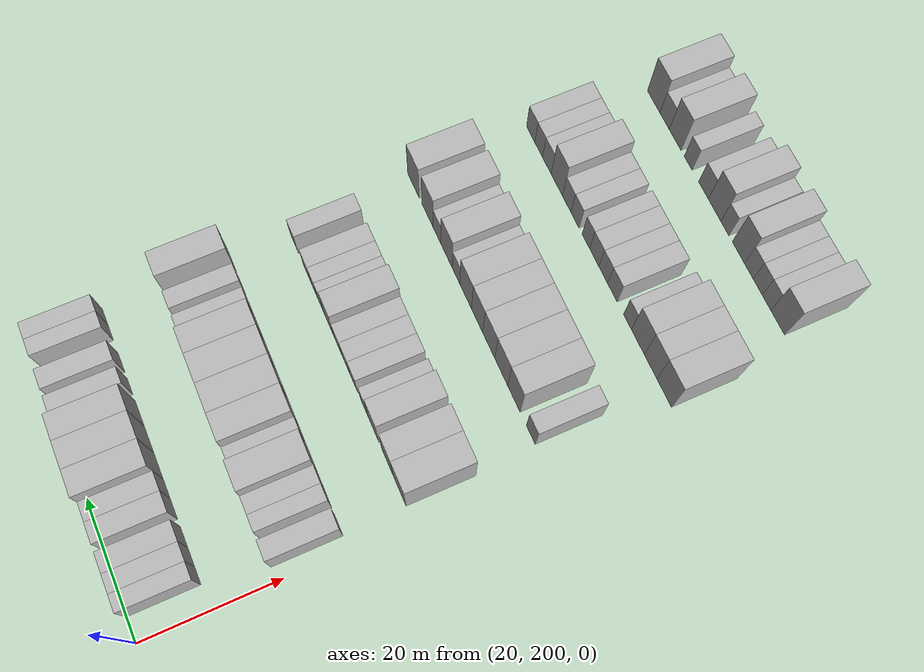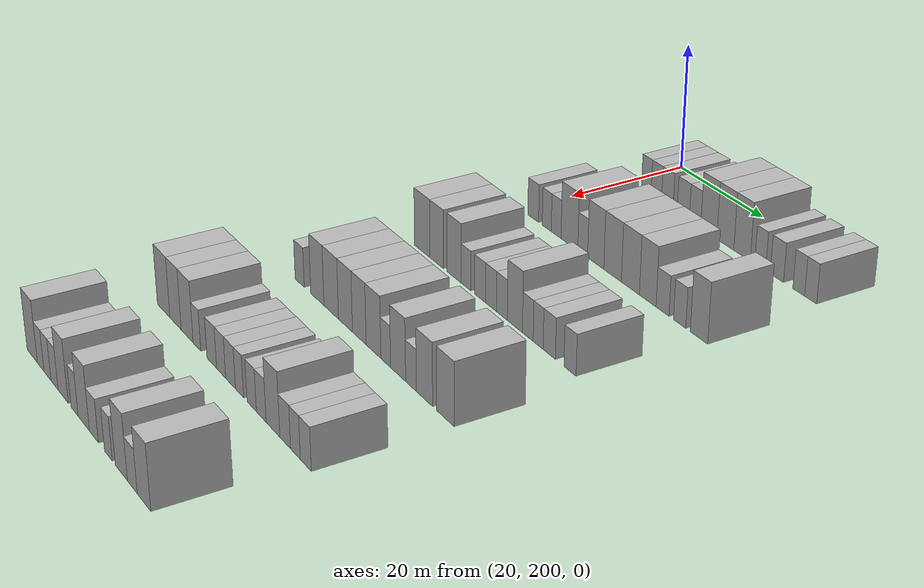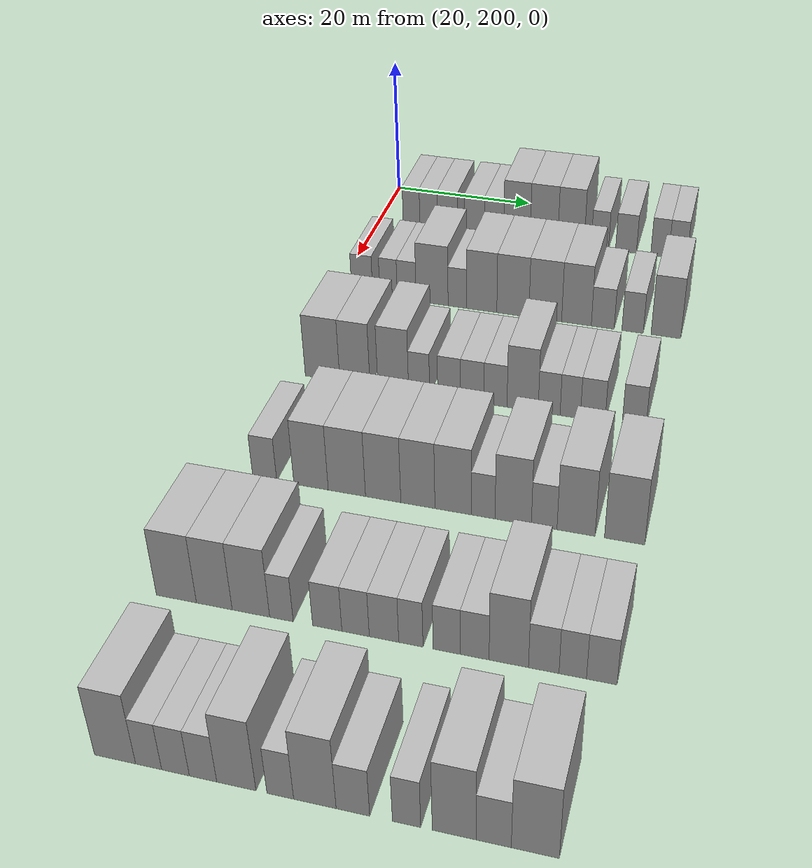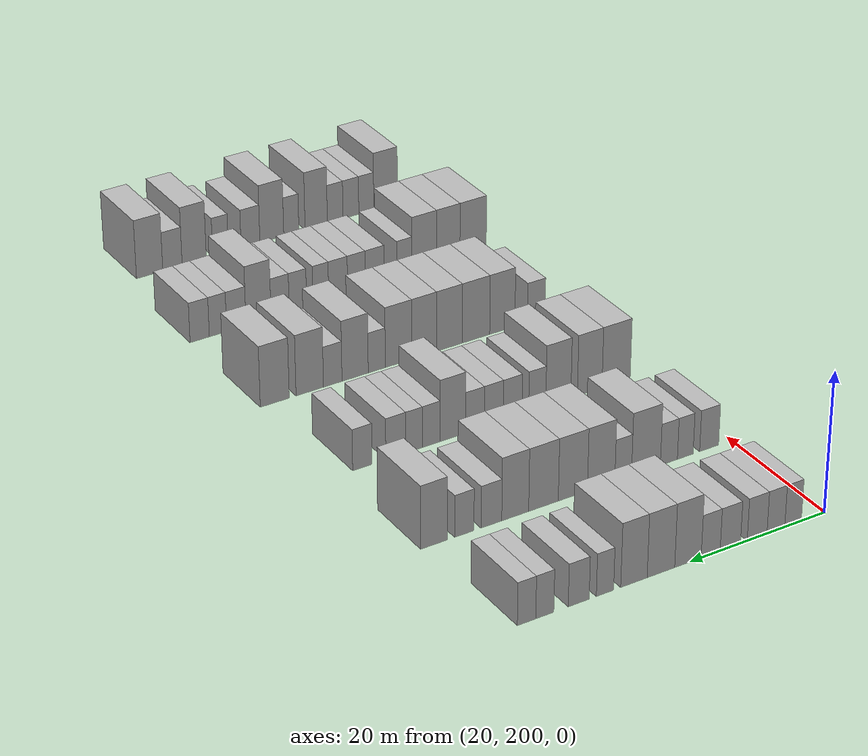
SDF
<sdf version="1.6">
 <world name="default">
  <model name="building_144">
   <static>1</static>
   <pose>25.0000 204.7909 0 0.000000 0.000000 0.000000</pose>
   <link name="link">
    <pose>0 0 3.00 0 0 0</pose>
    <collision name="collision"><geometry><box><size>10.0000 2.4946 6.0000</size></box></geometry></collision>
    <visual name="visual">
     <cast_shadows>0</cast_shadows>
     <geometry><box><size>10.0000 2.4946 6.0000</size></box></geometry>
     <material>
      <script>
       <uri>model://HANNAS_wall/materials/scripts</uri>
       <uri>model://HANNAS_wall/materials/textures</uri>
       <name>vrc/HANNAS_wall</name>
      </script>
     </material>
    </visual>
   </link>
  </model>
  <model name="building_145">
   <static>1</static>
   <pose>25.0000 207.3649 0 0.000000 0.000000 0.000000</pose>
   <link name="link">
    <pose>0 0 3.00 0 0 0</pose>
    <collision name="collision"><geometry><box><size>10.0000 2.6533 6.0000</size></box></geometry></collision>
    <visual name="visual">
     <cast_shadows>0</cast_shadows>
     <geometry><box><size>10.0000 2.6533 6.0000</size></box></geometry>
     <material>
      <script>
       <uri>model://HANNAS_wall/materials/scripts</uri>
       <uri>model://HANNAS_wall/materials/textures</uri>
       <name>vrc/HANNAS_wall</name>
      </script>
     </material>
    </visual>
   </link>
  </model>
  <model name="building_146">
   <static>1</static>
   <pose>25.0000 210.1625 0 0.000000 0.000000 0.000000</pose>
   <link name="link">
    <pose>0 0 3.00 0 0 0</pose>
    <collision name="collision"><geometry><box><size>10.0000 2.9418 6.0000</size></box></geometry></collision>
    <visual name="visual">
     <cast_shadows>0</cast_shadows>
     <geometry><box><size>10.0000 2.9418 6.0000</size></box></geometry>
     <material>
      <script>
       <uri>model://HANNAS_wall/materials/scripts</uri>
       <uri>model://HANNAS_wall/materials/textures</uri>
       <name>vrc/HANNAS_wall</name>
      </script>
     </material>
    </visual>
   </link>
  </model>
  <model name="building_147">
   <static>1</static>
   <pose>25.0000 214.1259 0 0.000000 0.000000 0.000000</pose>
   <link name="link">
    <pose>0 0 3.00 0 0 0</pose>
    <collision name="collision"><geometry><box><size>10.0000 2.9849 6.0000</size></box></geometry></collision>
    <visual name="visual">
     <cast_shadows>0</cast_shadows>
     <geometry><box><size>10.0000 2.9849 6.0000</size></box></geometry>
     <material>
      <script>
       <uri>model://HANNAS_wall/materials/scripts</uri>
       <uri>model://HANNAS_wall/materials/textures</uri>
       <name>vrc/HANNAS_wall</name>
      </script>
     </material>
    </visual>
   </link>
  </model>
  <model name="building_148">
   <static>1</static>
   <pose>25.0000 217.0065 0 0.000000 0.000000 0.000000</pose>
   <link name="link">
    <pose>0 0 3.00 0 0 0</pose>
    <collision name="collision"><geometry><box><size>10.0000 2.7764 6.0000</size></box></geometry></collision>
    <visual name="visual">
     <cast_shadows>0</cast_shadows>
     <geometry><box><size>10.0000 2.7764 6.0000</size></box></geometry>
     <material>
      <script>
       <uri>model://HANNAS_wall/materials/scripts</uri>
       <uri>model://HANNAS_wall/materials/textures</uri>
       <name>vrc/HANNAS_wall</name>
      </script>
     </material>
    </visual>
   </link>
  </model>
  <model name="building_149">
   <static>1</static>
   <pose>25.0000 220.3161 0 0.000000 0.000000 0.000000</pose>
   <link name="link">
    <pose>0 0 4.50 0 0 0</pose>
    <collision name="collision"><geometry><box><size>10.0000 3.8427 9.0000</size></box></geometry></collision>
    <visual name="visual">
     <cast_shadows>0</cast_shadows>
     <geometry><box><size>10.0000 3.8427 9.0000</size></box></geometry>
     <material>
      <script>
       <uri>model://HANNAS_wall/materials/scripts</uri>
       <uri>model://HANNAS_wall/materials/textures</uri>
       <name>vrc/HANNAS_wall</name>
      </script>
     </material>
    </visual>
   </link>
  </model>
  <model name="building_150">
   <static>1</static>
   <pose>25.0000 224.2165 0 0.000000 0.000000 0.000000</pose>
   <link name="link">
    <pose>0 0 4.50 0 0 0</pose>
    <collision name="collision"><geometry><box><size>10.0000 3.9581 9.0000</size></box></geometry></collision>
    <visual name="visual">
     <cast_shadows>0</cast_shadows>
     <geometry><box><size>10.0000 3.9581 9.0000</size></box></geometry>
     <material>
      <script>
       <uri>model://HANNAS_wall/materials/scripts</uri>
       <uri>model://HANNAS_wall/materials/textures</uri>
       <name>vrc/HANNAS_wall</name>
      </script>
     </material>
    </visual>
   </link>
  </model>
  <model name="building_151">
   <static>1</static>
   <pose>25.0000 228.0783 0 0.000000 0.000000 0.000000</pose>
   <link name="link">
    <pose>0 0 4.50 0 0 0</pose>
    <collision name="collision"><geometry><box><size>10.0000 3.7656 9.0000</size></box></geometry></collision>
    <visual name="visual">
     <cast_shadows>0</cast_shadows>
     <geometry><box><size>10.0000 3.7656 9.0000</size></box></geometry>
     <material>
      <script>
       <uri>model://HANNAS_wall/materials/scripts</uri>
       <uri>model://HANNAS_wall/materials/textures</uri>
       <name>vrc/HANNAS_wall</name>
      </script>
     </material>
    </visual>
   </link>
  </model>
  <model name="building_152">
   <static>1</static>
   <pose>25.0000 232.1813 0 0.000000 0.000000 0.000000</pose>
   <link name="link">
    <pose>0 0 3.00 0 0 0</pose>
    <collision name="collision"><geometry><box><size>10.0000 2.4403 6.0000</size></box></geometry></collision>
    <visual name="visual">
     <cast_shadows>0</cast_shadows>
     <geometry><box><size>10.0000 2.4403 6.0000</size></box></geometry>
     <material>
      <script>
       <uri>model://HANNAS_wall/materials/scripts</uri>
       <uri>model://HANNAS_wall/materials/textures</uri>
       <name>vrc/HANNAS_wall</name>
      </script>
     </material>
    </visual>
   </link>
  </model>
  <model name="building_153">
   <static>1</static>
   <pose>25.0000 235.8617 0 0.000000 0.000000 0.000000</pose>
   <link name="link">
    <pose>0 0 3.00 0 0 0</pose>
    <collision name="collision"><geometry><box><size>10.0000 2.9205 6.0000</size></box></geometry></collision>
    <visual name="visual">
     <cast_shadows>0</cast_shadows>
     <geometry><box><size>10.0000 2.9205 6.0000</size></box></geometry>
     <material>
      <script>
       <uri>model://HANNAS_wall/materials/scripts</uri>
       <uri>model://HANNAS_wall/materials/textures</uri>
       <name>vrc/HANNAS_wall</name>
      </script>
     </material>
    </visual>
   </link>
  </model>
  <model name="building_154">
   <static>1</static>
   <pose>25.0000 240.5678 0 0.000000 0.000000 0.000000</pose>
   <link name="link">
    <pose>0 0 3.00 0 0 0</pose>
    <collision name="collision"><geometry><box><size>10.0000 2.4918 6.0000</size></box></geometry></collision>
    <visual name="visual">
     <cast_shadows>0</cast_shadows>
     <geometry><box><size>10.0000 2.4918 6.0000</size></box></geometry>
     <material>
      <script>
       <uri>model://HANNAS_wall/materials/scripts</uri>
       <uri>model://HANNAS_wall/materials/textures</uri>
       <name>vrc/HANNAS_wall</name>
      </script>
     </material>
    </visual>
   </link>
  </model>
  <model name="building_155">
   <static>1</static>
   <pose>25.0000 243.0780 0 0.000000 0.000000 0.000000</pose>
   <link name="link">
    <pose>0 0 3.00 0 0 0</pose>
    <collision name="collision"><geometry><box><size>10.0000 2.5286 6.0000</size></box></geometry></collision>
    <visual name="visual">
     <cast_shadows>0</cast_shadows>
     <geometry><box><size>10.0000 2.5286 6.0000</size></box></geometry>
     <material>
      <script>
       <uri>model://HANNAS_wall/materials/scripts</uri>
       <uri>model://HANNAS_wall/materials/textures</uri>
       <name>vrc/HANNAS_wall</name>
      </script>
     </material>
    </visual>
   </link>
  </model>
  <model name="building_309">
   <static>1</static>
   <pose>44.0000 203.4681 0 0.000000 0.000000 0.000000</pose>
   <link name="link">
    <pose>0 0 3.00 0 0 0</pose>
    <collision name="collision"><geometry><box><size>10.0000 2.9147 6.0000</size></box></geometry></collision>
    <visual name="visual">
     <cast_shadows>0</cast_shadows>
     <geometry><box><size>10.0000 2.9147 6.0000</size></box></geometry>
     <material>
      <script>
       <uri>model://HANNAS_wall/materials/scripts</uri>
       <uri>model://HANNAS_wall/materials/textures</uri>
       <name>vrc/HANNAS_wall</name>
      </script>
     </material>
    </visual>
   </link>
  </model>
  <model name="building_310">
   <static>1</static>
   <pose>44.0000 207.1272 0 0.000000 0.000000 0.000000</pose>
   <link name="link">
    <pose>0 0 3.00 0 0 0</pose>
    <collision name="collision"><geometry><box><size>10.0000 2.4034 6.0000</size></box></geometry></collision>
    <visual name="visual">
     <cast_shadows>0</cast_shadows>
     <geometry><box><size>10.0000 2.4034 6.0000</size></box></geometry>
     <material>
      <script>
       <uri>model://HANNAS_wall/materials/scripts</uri>
       <uri>model://HANNAS_wall/materials/textures</uri>
       <name>vrc/HANNAS_wall</name>
      </script>
     </material>
    </visual>
   </link>
  </model>
  <model name="building_311">
   <static>1</static>
   <pose>44.0000 209.6219 0 0.000000 0.000000 0.000000</pose>
   <link name="link">
    <pose>0 0 3.00 0 0 0</pose>
    <collision name="collision"><geometry><box><size>10.0000 2.5860 6.0000</size></box></geometry></collision>
    <visual name="visual">
     <cast_shadows>0</cast_shadows>
     <geometry><box><size>10.0000 2.5860 6.0000</size></box></geometry>
     <material>
      <script>
       <uri>model://HANNAS_wall/materials/scripts</uri>
       <uri>model://HANNAS_wall/materials/textures</uri>
       <name>vrc/HANNAS_wall</name>
      </script>
     </material>
    </visual>
   </link>
  </model>
  <model name="building_312">
   <static>1</static>
   <pose>44.0000 213.0892 0 0.000000 0.000000 0.000000</pose>
   <link name="link">
    <pose>0 0 4.50 0 0 0</pose>
    <collision name="collision"><geometry><box><size>10.0000 4.3486 9.0000</size></box></geometry></collision>
    <visual name="visual">
     <cast_shadows>0</cast_shadows>
     <geometry><box><size>10.0000 4.3486 9.0000</size></box></geometry>
     <material>
      <script>
       <uri>model://HANNAS_wall/materials/scripts</uri>
       <uri>model://HANNAS_wall/materials/textures</uri>
       <name>vrc/HANNAS_wall</name>
      </script>
     </material>
    </visual>
   </link>
  </model>
  <model name="building_313">
   <static>1</static>
   <pose>44.0000 216.5099 0 0.000000 0.000000 0.000000</pose>
   <link name="link">
    <pose>0 0 3.00 0 0 0</pose>
    <collision name="collision"><geometry><box><size>10.0000 2.4927 6.0000</size></box></geometry></collision>
    <visual name="visual">
     <cast_shadows>0</cast_shadows>
     <geometry><box><size>10.0000 2.4927 6.0000</size></box></geometry>
     <material>
      <script>
       <uri>model://HANNAS_wall/materials/scripts</uri>
       <uri>model://HANNAS_wall/materials/textures</uri>
       <name>vrc/HANNAS_wall</name>
      </script>
     </material>
    </visual>
   </link>
  </model>
  <model name="building_314">
   <static>1</static>
   <pose>44.0000 219.7888 0 0.000000 0.000000 0.000000</pose>
   <link name="link">
    <pose>0 0 4.50 0 0 0</pose>
    <collision name="collision"><geometry><box><size>10.0000 4.0652 9.0000</size></box></geometry></collision>
    <visual name="visual">
     <cast_shadows>0</cast_shadows>
     <geometry><box><size>10.0000 4.0652 9.0000</size></box></geometry>
     <material>
      <script>
       <uri>model://HANNAS_wall/materials/scripts</uri>
       <uri>model://HANNAS_wall/materials/textures</uri>
       <name>vrc/HANNAS_wall</name>
      </script>
     </material>
    </visual>
   </link>
  </model>
  <model name="building_315">
   <static>1</static>
   <pose>44.0000 223.9574 0 0.000000 0.000000 0.000000</pose>
   <link name="link">
    <pose>0 0 4.50 0 0 0</pose>
    <collision name="collision"><geometry><box><size>10.0000 4.2720 9.0000</size></box></geometry></collision>
    <visual name="visual">
     <cast_shadows>0</cast_shadows>
     <geometry><box><size>10.0000 4.2720 9.0000</size></box></geometry>
     <material>
      <script>
       <uri>model://HANNAS_wall/materials/scripts</uri>
       <uri>model://HANNAS_wall/materials/textures</uri>
       <name>vrc/HANNAS_wall</name>
      </script>
     </material>
    </visual>
   </link>
  </model>
  <model name="building_316">
   <static>1</static>
   <pose>44.0000 228.2443 0 0.000000 0.000000 0.000000</pose>
   <link name="link">
    <pose>0 0 4.50 0 0 0</pose>
    <collision name="collision"><geometry><box><size>10.0000 4.3016 9.0000</size></box></geometry></collision>
    <visual name="visual">
     <cast_shadows>0</cast_shadows>
     <geometry><box><size>10.0000 4.3016 9.0000</size></box></geometry>
     <material>
      <script>
       <uri>model://HANNAS_wall/materials/scripts</uri>
       <uri>model://HANNAS_wall/materials/textures</uri>
       <name>vrc/HANNAS_wall</name>
      </script>
     </material>
    </visual>
   </link>
  </model>
  <model name="building_317">
   <static>1</static>
   <pose>44.0000 232.3325 0 0.000000 0.000000 0.000000</pose>
   <link name="link">
    <pose>0 0 4.50 0 0 0</pose>
    <collision name="collision"><geometry><box><size>10.0000 3.8748 9.0000</size></box></geometry></collision>
    <visual name="visual">
     <cast_shadows>0</cast_shadows>
     <geometry><box><size>10.0000 3.8748 9.0000</size></box></geometry>
     <material>
      <script>
       <uri>model://HANNAS_wall/materials/scripts</uri>
       <uri>model://HANNAS_wall/materials/textures</uri>
       <name>vrc/HANNAS_wall</name>
      </script>
     </material>
    </visual>
   </link>
  </model>
  <model name="building_318">
   <static>1</static>
   <pose>44.0000 235.7505 0 0.000000 0.000000 0.000000</pose>
   <link name="link">
    <pose>0 0 3.00 0 0 0</pose>
    <collision name="collision"><geometry><box><size>10.0000 2.9612 6.0000</size></box></geometry></collision>
    <visual name="visual">
     <cast_shadows>0</cast_shadows>
     <geometry><box><size>10.0000 2.9612 6.0000</size></box></geometry>
     <material>
      <script>
       <uri>model://HANNAS_wall/materials/scripts</uri>
       <uri>model://HANNAS_wall/materials/textures</uri>
       <name>vrc/HANNAS_wall</name>
      </script>
     </material>
    </visual>
   </link>
  </model>
  <model name="building_319">
   <static>1</static>
   <pose>44.0000 239.5969 0 0.000000 0.000000 0.000000</pose>
   <link name="link">
    <pose>0 0 3.00 0 0 0</pose>
    <collision name="collision"><geometry><box><size>10.0000 2.7316 6.0000</size></box></geometry></collision>
    <visual name="visual">
     <cast_shadows>0</cast_shadows>
     <geometry><box><size>10.0000 2.7316 6.0000</size></box></geometry>
     <material>
      <script>
       <uri>model://HANNAS_wall/materials/scripts</uri>
       <uri>model://HANNAS_wall/materials/textures</uri>
       <name>vrc/HANNAS_wall</name>
      </script>
     </material>
    </visual>
   </link>
  </model>
  <model name="building_320">
   <static>1</static>
   <pose>44.0000 243.8486 0 0.000000 0.000000 0.000000</pose>
   <link name="link">
    <pose>0 0 4.50 0 0 0</pose>
    <collision name="collision"><geometry><box><size>10.0000 3.7718 9.0000</size></box></geometry></collision>
    <visual name="visual">
     <cast_shadows>0</cast_shadows>
     <geometry><box><size>10.0000 3.7718 9.0000</size></box></geometry>
     <material>
      <script>
       <uri>model://HANNAS_wall/materials/scripts</uri>
       <uri>model://HANNAS_wall/materials/textures</uri>
       <name>vrc/HANNAS_wall</name>
      </script>
     </material>
    </visual>
   </link>
  </model>
  <model name="building_475">
   <static>1</static>
   <pose>63.0000 204.5110 0 0.000000 0.000000 0.000000</pose>
   <link name="link">
    <pose>0 0 4.50 0 0 0</pose>
    <collision name="collision"><geometry><box><size>10.0000 4.4213 9.0000</size></box></geometry></collision>
    <visual name="visual">
     <cast_shadows>0</cast_shadows>
     <geometry><box><size>10.0000 4.4213 9.0000</size></box></geometry>
     <material>
      <script>
       <uri>model://HANNAS_wall/materials/scripts</uri>
       <uri>model://HANNAS_wall/materials/textures</uri>
       <name>vrc/HANNAS_wall</name>
      </script>
     </material>
    </visual>
   </link>
  </model>
  <model name="building_476">
   <static>1</static>
   <pose>63.0000 208.6339 0 0.000000 0.000000 0.000000</pose>
   <link name="link">
    <pose>0 0 4.50 0 0 0</pose>
    <collision name="collision"><geometry><box><size>10.0000 3.8246 9.0000</size></box></geometry></collision>
    <visual name="visual">
     <cast_shadows>0</cast_shadows>
     <geometry><box><size>10.0000 3.8246 9.0000</size></box></geometry>
     <material>
      <script>
       <uri>model://HANNAS_wall/materials/scripts</uri>
       <uri>model://HANNAS_wall/materials/textures</uri>
       <name>vrc/HANNAS_wall</name>
      </script>
     </material>
    </visual>
   </link>
  </model>
  <model name="building_477">
   <static>1</static>
   <pose>63.0000 213.4714 0 0.000000 0.000000 0.000000</pose>
   <link name="link">
    <pose>0 0 4.50 0 0 0</pose>
    <collision name="collision"><geometry><box><size>10.0000 3.8504 9.0000</size></box></geometry></collision>
    <visual name="visual">
     <cast_shadows>0</cast_shadows>
     <geometry><box><size>10.0000 3.8504 9.0000</size></box></geometry>
     <material>
      <script>
       <uri>model://HANNAS_wall/materials/scripts</uri>
       <uri>model://HANNAS_wall/materials/textures</uri>
       <name>vrc/HANNAS_wall</name>
      </script>
     </material>
    </visual>
   </link>
  </model>
  <model name="building_478">
   <static>1</static>
   <pose>63.0000 216.7036 0 0.000000 0.000000 0.000000</pose>
   <link name="link">
    <pose>0 0 3.00 0 0 0</pose>
    <collision name="collision"><geometry><box><size>10.0000 2.6140 6.0000</size></box></geometry></collision>
    <visual name="visual">
     <cast_shadows>0</cast_shadows>
     <geometry><box><size>10.0000 2.6140 6.0000</size></box></geometry>
     <material>
      <script>
       <uri>model://HANNAS_wall/materials/scripts</uri>
       <uri>model://HANNAS_wall/materials/textures</uri>
       <name>vrc/HANNAS_wall</name>
      </script>
     </material>
    </visual>
   </link>
  </model>
  <model name="building_479">
   <static>1</static>
   <pose>63.0000 220.4214 0 0.000000 0.000000 0.000000</pose>
   <link name="link">
    <pose>0 0 3.00 0 0 0</pose>
    <collision name="collision"><geometry><box><size>10.0000 2.8214 6.0000</size></box></geometry></collision>
    <visual name="visual">
     <cast_shadows>0</cast_shadows>
     <geometry><box><size>10.0000 2.8214 6.0000</size></box></geometry>
     <material>
      <script>
       <uri>model://HANNAS_wall/materials/scripts</uri>
       <uri>model://HANNAS_wall/materials/textures</uri>
       <name>vrc/HANNAS_wall</name>
      </script>
     </material>
    </visual>
   </link>
  </model>
  <model name="building_480">
   <static>1</static>
   <pose>63.0000 223.2634 0 0.000000 0.000000 0.000000</pose>
   <link name="link">
    <pose>0 0 3.00 0 0 0</pose>
    <collision name="collision"><geometry><box><size>10.0000 2.8627 6.0000</size></box></geometry></collision>
    <visual name="visual">
     <cast_shadows>0</cast_shadows>
     <geometry><box><size>10.0000 2.8627 6.0000</size></box></geometry>
     <material>
      <script>
       <uri>model://HANNAS_wall/materials/scripts</uri>
       <uri>model://HANNAS_wall/materials/textures</uri>
       <name>vrc/HANNAS_wall</name>
      </script>
     </material>
    </visual>
   </link>
  </model>
  <model name="building_481">
   <static>1</static>
   <pose>63.0000 226.0904 0 0.000000 0.000000 0.000000</pose>
   <link name="link">
    <pose>0 0 3.00 0 0 0</pose>
    <collision name="collision"><geometry><box><size>10.0000 2.7912 6.0000</size></box></geometry></collision>
    <visual name="visual">
     <cast_shadows>0</cast_shadows>
     <geometry><box><size>10.0000 2.7912 6.0000</size></box></geometry>
     <material>
      <script>
       <uri>model://HANNAS_wall/materials/scripts</uri>
       <uri>model://HANNAS_wall/materials/textures</uri>
       <name>vrc/HANNAS_wall</name>
      </script>
     </material>
    </visual>
   </link>
  </model>
  <model name="building_482">
   <static>1</static>
   <pose>63.0000 229.3650 0 0.000000 0.000000 0.000000</pose>
   <link name="link">
    <pose>0 0 4.50 0 0 0</pose>
    <collision name="collision"><geometry><box><size>10.0000 3.7580 9.0000</size></box></geometry></collision>
    <visual name="visual">
     <cast_shadows>0</cast_shadows>
     <geometry><box><size>10.0000 3.7580 9.0000</size></box></geometry>
     <material>
      <script>
       <uri>model://HANNAS_wall/materials/scripts</uri>
       <uri>model://HANNAS_wall/materials/textures</uri>
       <name>vrc/HANNAS_wall</name>
      </script>
     </material>
    </visual>
   </link>
  </model>
  <model name="building_483">
   <static>1</static>
   <pose>63.0000 232.5531 0 0.000000 0.000000 0.000000</pose>
   <link name="link">
    <pose>0 0 3.00 0 0 0</pose>
    <collision name="collision"><geometry><box><size>10.0000 2.6181 6.0000</size></box></geometry></collision>
    <visual name="visual">
     <cast_shadows>0</cast_shadows>
     <geometry><box><size>10.0000 2.6181 6.0000</size></box></geometry>
     <material>
      <script>
       <uri>model://HANNAS_wall/materials/scripts</uri>
       <uri>model://HANNAS_wall/materials/textures</uri>
       <name>vrc/HANNAS_wall</name>
      </script>
     </material>
    </visual>
   </link>
  </model>
  <model name="building_484">
   <static>1</static>
   <pose>63.0000 235.0660 0 0.000000 0.000000 0.000000</pose>
   <link name="link">
    <pose>0 0 3.00 0 0 0</pose>
    <collision name="collision"><geometry><box><size>10.0000 2.4077 6.0000</size></box></geometry></collision>
    <visual name="visual">
     <cast_shadows>0</cast_shadows>
     <geometry><box><size>10.0000 2.4077 6.0000</size></box></geometry>
     <material>
      <script>
       <uri>model://HANNAS_wall/materials/scripts</uri>
       <uri>model://HANNAS_wall/materials/textures</uri>
       <name>vrc/HANNAS_wall</name>
      </script>
     </material>
    </visual>
   </link>
  </model>
  <model name="building_485">
   <static>1</static>
   <pose>63.0000 237.7285 0 0.000000 0.000000 0.000000</pose>
   <link name="link">
    <pose>0 0 3.00 0 0 0</pose>
    <collision name="collision"><geometry><box><size>10.0000 2.9173 6.0000</size></box></geometry></collision>
    <visual name="visual">
     <cast_shadows>0</cast_shadows>
     <geometry><box><size>10.0000 2.9173 6.0000</size></box></geometry>
     <material>
      <script>
       <uri>model://HANNAS_wall/materials/scripts</uri>
       <uri>model://HANNAS_wall/materials/textures</uri>
       <name>vrc/HANNAS_wall</name>
      </script>
     </material>
    </visual>
   </link>
  </model>
  <model name="building_486">
   <static>1</static>
   <pose>63.0000 242.5767 0 0.000000 0.000000 0.000000</pose>
   <link name="link">
    <pose>0 0 3.00 0 0 0</pose>
    <collision name="collision"><geometry><box><size>10.0000 2.7791 6.0000</size></box></geometry></collision>
    <visual name="visual">
     <cast_shadows>0</cast_shadows>
     <geometry><box><size>10.0000 2.7791 6.0000</size></box></geometry>
     <material>
      <script>
       <uri>model://HANNAS_wall/materials/scripts</uri>
       <uri>model://HANNAS_wall/materials/textures</uri>
       <name>vrc/HANNAS_wall</name>
      </script>
     </material>
    </visual>
   </link>
  </model>
  <model name="building_641">
   <static>1</static>
   <pose>82.0000 204.3930 0 0.000000 0.000000 0.000000</pose>
   <link name="link">
    <pose>0 0 3.00 0 0 0</pose>
    <collision name="collision"><geometry><box><size>10.0000 2.8102 6.0000</size></box></geometry></collision>
    <visual name="visual">
     <cast_shadows>0</cast_shadows>
     <geometry><box><size>10.0000 2.8102 6.0000</size></box></geometry>
     <material>
      <script>
       <uri>model://HANNAS_wall/materials/scripts</uri>
       <uri>model://HANNAS_wall/materials/textures</uri>
       <name>vrc/HANNAS_wall</name>
      </script>
     </material>
    </visual>
   </link>
  </model>
  <model name="building_642">
   <static>1</static>
   <pose>82.0000 209.7882 0 0.000000 0.000000 0.000000</pose>
   <link name="link">
    <pose>0 0 4.50 0 0 0</pose>
    <collision name="collision"><geometry><box><size>10.0000 3.9802 9.0000</size></box></geometry></collision>
    <visual name="visual">
     <cast_shadows>0</cast_shadows>
     <geometry><box><size>10.0000 3.9802 9.0000</size></box></geometry>
     <material>
      <script>
       <uri>model://HANNAS_wall/materials/scripts</uri>
       <uri>model://HANNAS_wall/materials/textures</uri>
       <name>vrc/HANNAS_wall</name>
      </script>
     </material>
    </visual>
   </link>
  </model>
  <model name="building_643">
   <static>1</static>
   <pose>82.0000 213.9108 0 0.000000 0.000000 0.000000</pose>
   <link name="link">
    <pose>0 0 4.50 0 0 0</pose>
    <collision name="collision"><geometry><box><size>10.0000 4.2650 9.0000</size></box></geometry></collision>
    <visual name="visual">
     <cast_shadows>0</cast_shadows>
     <geometry><box><size>10.0000 4.2650 9.0000</size></box></geometry>
     <material>
      <script>
       <uri>model://HANNAS_wall/materials/scripts</uri>
       <uri>model://HANNAS_wall/materials/textures</uri>
       <name>vrc/HANNAS_wall</name>
      </script>
     </material>
    </visual>
   </link>
  </model>
  <model name="building_644">
   <static>1</static>
   <pose>82.0000 218.0419 0 0.000000 0.000000 0.000000</pose>
   <link name="link">
    <pose>0 0 4.50 0 0 0</pose>
    <collision name="collision"><geometry><box><size>10.0000 3.9972 9.0000</size></box></geometry></collision>
    <visual name="visual">
     <cast_shadows>0</cast_shadows>
     <geometry><box><size>10.0000 3.9972 9.0000</size></box></geometry>
     <material>
      <script>
       <uri>model://HANNAS_wall/materials/scripts</uri>
       <uri>model://HANNAS_wall/materials/textures</uri>
       <name>vrc/HANNAS_wall</name>
      </script>
     </material>
    </visual>
   </link>
  </model>
  <model name="building_645">
   <static>1</static>
   <pose>82.0000 221.9510 0 0.000000 0.000000 0.000000</pose>
   <link name="link">
    <pose>0 0 4.50 0 0 0</pose>
    <collision name="collision"><geometry><box><size>10.0000 3.8209 9.0000</size></box></geometry></collision>
    <visual name="visual">
     <cast_shadows>0</cast_shadows>
     <geometry><box><size>10.0000 3.8209 9.0000</size></box></geometry>
     <material>
      <script>
       <uri>model://HANNAS_wall/materials/scripts</uri>
       <uri>model://HANNAS_wall/materials/textures</uri>
       <name>vrc/HANNAS_wall</name>
      </script>
     </material>
    </visual>
   </link>
  </model>
  <model name="building_646">
   <static>1</static>
   <pose>82.0000 225.8784 0 0.000000 0.000000 0.000000</pose>
   <link name="link">
    <pose>0 0 4.50 0 0 0</pose>
    <collision name="collision"><geometry><box><size>10.0000 4.0338 9.0000</size></box></geometry></collision>
    <visual name="visual">
     <cast_shadows>0</cast_shadows>
     <geometry><box><size>10.0000 4.0338 9.0000</size></box></geometry>
     <material>
      <script>
       <uri>model://HANNAS_wall/materials/scripts</uri>
       <uri>model://HANNAS_wall/materials/textures</uri>
       <name>vrc/HANNAS_wall</name>
      </script>
     </material>
    </visual>
   </link>
  </model>
  <model name="building_647">
   <static>1</static>
   <pose>82.0000 229.1922 0 0.000000 0.000000 0.000000</pose>
   <link name="link">
    <pose>0 0 3.00 0 0 0</pose>
    <collision name="collision"><geometry><box><size>10.0000 2.5939 6.0000</size></box></geometry></collision>
    <visual name="visual">
     <cast_shadows>0</cast_shadows>
     <geometry><box><size>10.0000 2.5939 6.0000</size></box></geometry>
     <material>
      <script>
       <uri>model://HANNAS_wall/materials/scripts</uri>
       <uri>model://HANNAS_wall/materials/textures</uri>
       <name>vrc/HANNAS_wall</name>
      </script>
     </material>
    </visual>
   </link>
  </model>
  <model name="building_648">
   <static>1</static>
   <pose>82.0000 232.4609 0 0.000000 0.000000 0.000000</pose>
   <link name="link">
    <pose>0 0 4.50 0 0 0</pose>
    <collision name="collision"><geometry><box><size>10.0000 3.9434 9.0000</size></box></geometry></collision>
    <visual name="visual">
     <cast_shadows>0</cast_shadows>
     <geometry><box><size>10.0000 3.9434 9.0000</size></box></geometry>
     <material>
      <script>
       <uri>model://HANNAS_wall/materials/scripts</uri>
       <uri>model://HANNAS_wall/materials/textures</uri>
       <name>vrc/HANNAS_wall</name>
      </script>
     </material>
    </visual>
   </link>
  </model>
  <model name="building_649">
   <static>1</static>
   <pose>82.0000 235.8146 0 0.000000 0.000000 0.000000</pose>
   <link name="link">
    <pose>0 0 3.00 0 0 0</pose>
    <collision name="collision"><geometry><box><size>10.0000 2.7640 6.0000</size></box></geometry></collision>
    <visual name="visual">
     <cast_shadows>0</cast_shadows>
     <geometry><box><size>10.0000 2.7640 6.0000</size></box></geometry>
     <material>
      <script>
       <uri>model://HANNAS_wall/materials/scripts</uri>
       <uri>model://HANNAS_wall/materials/textures</uri>
       <name>vrc/HANNAS_wall</name>
      </script>
     </material>
    </visual>
   </link>
  </model>
  <model name="building_650">
   <static>1</static>
   <pose>82.0000 239.2278 0 0.000000 0.000000 0.000000</pose>
   <link name="link">
    <pose>0 0 4.50 0 0 0</pose>
    <collision name="collision"><geometry><box><size>10.0000 4.0625 9.0000</size></box></geometry></collision>
    <visual name="visual">
     <cast_shadows>0</cast_shadows>
     <geometry><box><size>10.0000 4.0625 9.0000</size></box></geometry>
     <material>
      <script>
       <uri>model://HANNAS_wall/materials/scripts</uri>
       <uri>model://HANNAS_wall/materials/textures</uri>
       <name>vrc/HANNAS_wall</name>
      </script>
     </material>
    </visual>
   </link>
  </model>
  <model name="building_651">
   <static>1</static>
   <pose>82.0000 244.3797 0 0.000000 0.000000 0.000000</pose>
   <link name="link">
    <pose>0 0 4.50 0 0 0</pose>
    <collision name="collision"><geometry><box><size>10.0000 4.2413 9.0000</size></box></geometry></collision>
    <visual name="visual">
     <cast_shadows>0</cast_shadows>
     <geometry><box><size>10.0000 4.2413 9.0000</size></box></geometry>
     <material>
      <script>
       <uri>model://HANNAS_wall/materials/scripts</uri>
       <uri>model://HANNAS_wall/materials/textures</uri>
       <name>vrc/HANNAS_wall</name>
      </script>
     </material>
    </visual>
   </link>
  </model>
  <model name="building_806">
   <static>1</static>
   <pose>101.0000 202.3974 0 0.000000 0.000000 0.000000</pose>
   <link name="link">
    <pose>0 0 4.50 0 0 0</pose>
    <collision name="collision"><geometry><box><size>10.0000 4.2970 9.0000</size></box></geometry></collision>
    <visual name="visual">
     <cast_shadows>0</cast_shadows>
     <geometry><box><size>10.0000 4.2970 9.0000</size></box></geometry>
     <material>
      <script>
       <uri>model://HANNAS_wall/materials/scripts</uri>
       <uri>model://HANNAS_wall/materials/textures</uri>
       <name>vrc/HANNAS_wall</name>
      </script>
     </material>
    </visual>
   </link>
  </model>
  <model name="building_807">
   <static>1</static>
   <pose>101.0000 206.4417 0 0.000000 0.000000 0.000000</pose>
   <link name="link">
    <pose>0 0 4.50 0 0 0</pose>
    <collision name="collision"><geometry><box><size>10.0000 3.7916 9.0000</size></box></geometry></collision>
    <visual name="visual">
     <cast_shadows>0</cast_shadows>
     <geometry><box><size>10.0000 3.7916 9.0000</size></box></geometry>
     <material>
      <script>
       <uri>model://HANNAS_wall/materials/scripts</uri>
       <uri>model://HANNAS_wall/materials/textures</uri>
       <name>vrc/HANNAS_wall</name>
      </script>
     </material>
    </visual>
   </link>
  </model>
  <model name="building_808">
   <static>1</static>
   <pose>101.0000 210.3028 0 0.000000 0.000000 0.000000</pose>
   <link name="link">
    <pose>0 0 4.50 0 0 0</pose>
    <collision name="collision"><geometry><box><size>10.0000 3.9308 9.0000</size></box></geometry></collision>
    <visual name="visual">
     <cast_shadows>0</cast_shadows>
     <geometry><box><size>10.0000 3.9308 9.0000</size></box></geometry>
     <material>
      <script>
       <uri>model://HANNAS_wall/materials/scripts</uri>
       <uri>model://HANNAS_wall/materials/textures</uri>
       <name>vrc/HANNAS_wall</name>
      </script>
     </material>
    </visual>
   </link>
  </model>
  <model name="building_809">
   <static>1</static>
   <pose>101.0000 213.4913 0 0.000000 0.000000 0.000000</pose>
   <link name="link">
    <pose>0 0 3.00 0 0 0</pose>
    <collision name="collision"><geometry><box><size>10.0000 2.4461 6.0000</size></box></geometry></collision>
    <visual name="visual">
     <cast_shadows>0</cast_shadows>
     <geometry><box><size>10.0000 2.4461 6.0000</size></box></geometry>
     <material>
      <script>
       <uri>model://HANNAS_wall/materials/scripts</uri>
       <uri>model://HANNAS_wall/materials/textures</uri>
       <name>vrc/HANNAS_wall</name>
      </script>
     </material>
    </visual>
   </link>
  </model>
  <model name="building_810">
   <static>1</static>
   <pose>101.0000 218.2112 0 0.000000 0.000000 0.000000</pose>
   <link name="link">
    <pose>0 0 3.00 0 0 0</pose>
    <collision name="collision"><geometry><box><size>10.0000 2.9937 6.0000</size></box></geometry></collision>
    <visual name="visual">
     <cast_shadows>0</cast_shadows>
     <geometry><box><size>10.0000 2.9937 6.0000</size></box></geometry>
     <material>
      <script>
       <uri>model://HANNAS_wall/materials/scripts</uri>
       <uri>model://HANNAS_wall/materials/textures</uri>
       <name>vrc/HANNAS_wall</name>
      </script>
     </material>
    </visual>
   </link>
  </model>
  <model name="building_811">
   <static>1</static>
   <pose>101.0000 221.0969 0 0.000000 0.000000 0.000000</pose>
   <link name="link">
    <pose>0 0 3.00 0 0 0</pose>
    <collision name="collision"><geometry><box><size>10.0000 2.7777 6.0000</size></box></geometry></collision>
    <visual name="visual">
     <cast_shadows>0</cast_shadows>
     <geometry><box><size>10.0000 2.7777 6.0000</size></box></geometry>
     <material>
      <script>
       <uri>model://HANNAS_wall/materials/scripts</uri>
       <uri>model://HANNAS_wall/materials/textures</uri>
       <name>vrc/HANNAS_wall</name>
      </script>
     </material>
    </visual>
   </link>
  </model>
  <model name="building_812">
   <static>1</static>
   <pose>101.0000 223.9658 0 0.000000 0.000000 0.000000</pose>
   <link name="link">
    <pose>0 0 3.00 0 0 0</pose>
    <collision name="collision"><geometry><box><size>10.0000 2.9602 6.0000</size></box></geometry></collision>
    <visual name="visual">
     <cast_shadows>0</cast_shadows>
     <geometry><box><size>10.0000 2.9602 6.0000</size></box></geometry>
     <material>
      <script>
       <uri>model://HANNAS_wall/materials/scripts</uri>
       <uri>model://HANNAS_wall/materials/textures</uri>
       <name>vrc/HANNAS_wall</name>
      </script>
     </material>
    </visual>
   </link>
  </model>
  <model name="building_813">
   <static>1</static>
   <pose>101.0000 226.6589 0 0.000000 0.000000 0.000000</pose>
   <link name="link">
    <pose>0 0 3.00 0 0 0</pose>
    <collision name="collision"><geometry><box><size>10.0000 2.4259 6.0000</size></box></geometry></collision>
    <visual name="visual">
     <cast_shadows>0</cast_shadows>
     <geometry><box><size>10.0000 2.4259 6.0000</size></box></geometry>
     <material>
      <script>
       <uri>model://HANNAS_wall/materials/scripts</uri>
       <uri>model://HANNAS_wall/materials/textures</uri>
       <name>vrc/HANNAS_wall</name>
      </script>
     </material>
    </visual>
   </link>
  </model>
  <model name="building_814">
   <static>1</static>
   <pose>101.0000 230.2165 0 0.000000 0.000000 0.000000</pose>
   <link name="link">
    <pose>0 0 3.00 0 0 0</pose>
    <collision name="collision"><geometry><box><size>10.0000 2.6894 6.0000</size></box></geometry></collision>
    <visual name="visual">
     <cast_shadows>0</cast_shadows>
     <geometry><box><size>10.0000 2.6894 6.0000</size></box></geometry>
     <material>
      <script>
       <uri>model://HANNAS_wall/materials/scripts</uri>
       <uri>model://HANNAS_wall/materials/textures</uri>
       <name>vrc/HANNAS_wall</name>
      </script>
     </material>
    </visual>
   </link>
  </model>
  <model name="building_815">
   <static>1</static>
   <pose>101.0000 232.9593 0 0.000000 0.000000 0.000000</pose>
   <link name="link">
    <pose>0 0 3.00 0 0 0</pose>
    <collision name="collision"><geometry><box><size>10.0000 2.7963 6.0000</size></box></geometry></collision>
    <visual name="visual">
     <cast_shadows>0</cast_shadows>
     <geometry><box><size>10.0000 2.7963 6.0000</size></box></geometry>
     <material>
      <script>
       <uri>model://HANNAS_wall/materials/scripts</uri>
       <uri>model://HANNAS_wall/materials/textures</uri>
       <name>vrc/HANNAS_wall</name>
      </script>
     </material>
    </visual>
   </link>
  </model>
  <model name="building_816">
   <static>1</static>
   <pose>101.0000 236.2632 0 0.000000 0.000000 0.000000</pose>
   <link name="link">
    <pose>0 0 4.50 0 0 0</pose>
    <collision name="collision"><geometry><box><size>10.0000 3.8115 9.0000</size></box></geometry></collision>
    <visual name="visual">
     <cast_shadows>0</cast_shadows>
     <geometry><box><size>10.0000 3.8115 9.0000</size></box></geometry>
     <material>
      <script>
       <uri>model://HANNAS_wall/materials/scripts</uri>
       <uri>model://HANNAS_wall/materials/textures</uri>
       <name>vrc/HANNAS_wall</name>
      </script>
     </material>
    </visual>
   </link>
  </model>
  <model name="building_817">
   <static>1</static>
   <pose>101.0000 239.6301 0 0.000000 0.000000 0.000000</pose>
   <link name="link">
    <pose>0 0 3.00 0 0 0</pose>
    <collision name="collision"><geometry><box><size>10.0000 2.9222 6.0000</size></box></geometry></collision>
    <visual name="visual">
     <cast_shadows>0</cast_shadows>
     <geometry><box><size>10.0000 2.9222 6.0000</size></box></geometry>
     <material>
      <script>
       <uri>model://HANNAS_wall/materials/scripts</uri>
       <uri>model://HANNAS_wall/materials/textures</uri>
       <name>vrc/HANNAS_wall</name>
      </script>
     </material>
    </visual>
   </link>
  </model>
  <model name="building_818">
   <static>1</static>
   <pose>101.0000 242.3951 0 0.000000 0.000000 0.000000</pose>
   <link name="link">
    <pose>0 0 3.00 0 0 0</pose>
    <collision name="collision"><geometry><box><size>10.0000 2.6078 6.0000</size></box></geometry></collision>
    <visual name="visual">
     <cast_shadows>0</cast_shadows>
     <geometry><box><size>10.0000 2.6078 6.0000</size></box></geometry>
     <material>
      <script>
       <uri>model://HANNAS_wall/materials/scripts</uri>
       <uri>model://HANNAS_wall/materials/textures</uri>
       <name>vrc/HANNAS_wall</name>
      </script>
     </material>
    </visual>
   </link>
  </model>
  <model name="building_819">
   <static>1</static>
   <pose>101.0000 245.1393 0 0.000000 0.000000 0.000000</pose>
   <link name="link">
    <pose>0 0 3.00 0 0 0</pose>
    <collision name="collision"><geometry><box><size>10.0000 2.8807 6.0000</size></box></geometry></collision>
    <visual name="visual">
     <cast_shadows>0</cast_shadows>
     <geometry><box><size>10.0000 2.8807 6.0000</size></box></geometry>
     <material>
      <script>
       <uri>model://HANNAS_wall/materials/scripts</uri>
       <uri>model://HANNAS_wall/materials/textures</uri>
       <name>vrc/HANNAS_wall</name>
      </script>
     </material>
    </visual>
   </link>
  </model>
  <model name="building_989">
   <static>1</static>
   <pose>120.0000 205.1189 0 0.000000 0.000000 0.000000</pose>
   <link name="link">
    <pose>0 0 4.50 0 0 0</pose>
    <collision name="collision"><geometry><box><size>10.0000 3.9309 9.0000</size></box></geometry></collision>
    <visual name="visual">
     <cast_shadows>0</cast_shadows>
     <geometry><box><size>10.0000 3.9309 9.0000</size></box></geometry>
     <material>
      <script>
       <uri>model://HANNAS_wall/materials/scripts</uri>
       <uri>model://HANNAS_wall/materials/textures</uri>
       <name>vrc/HANNAS_wall</name>
      </script>
     </material>
    </visual>
   </link>
  </model>
  <model name="building_990">
   <static>1</static>
   <pose>120.0000 208.3195 0 0.000000 0.000000 0.000000</pose>
   <link name="link">
    <pose>0 0 3.00 0 0 0</pose>
    <collision name="collision"><geometry><box><size>10.0000 2.4702 6.0000</size></box></geometry></collision>
    <visual name="visual">
     <cast_shadows>0</cast_shadows>
     <geometry><box><size>10.0000 2.4702 6.0000</size></box></geometry>
     <material>
      <script>
       <uri>model://HANNAS_wall/materials/scripts</uri>
       <uri>model://HANNAS_wall/materials/textures</uri>
       <name>vrc/HANNAS_wall</name>
      </script>
     </material>
    </visual>
   </link>
  </model>
  <model name="building_991">
   <static>1</static>
   <pose>120.0000 210.8515 0 0.000000 0.000000 0.000000</pose>
   <link name="link">
    <pose>0 0 3.00 0 0 0</pose>
    <collision name="collision"><geometry><box><size>10.0000 2.5938 6.0000</size></box></geometry></collision>
    <visual name="visual">
     <cast_shadows>0</cast_shadows>
     <geometry><box><size>10.0000 2.5938 6.0000</size></box></geometry>
     <material>
      <script>
       <uri>model://HANNAS_wall/materials/scripts</uri>
       <uri>model://HANNAS_wall/materials/textures</uri>
       <name>vrc/HANNAS_wall</name>
      </script>
     </material>
    </visual>
   </link>
  </model>
  <model name="building_992">
   <static>1</static>
   <pose>120.0000 213.4243 0 0.000000 0.000000 0.000000</pose>
   <link name="link">
    <pose>0 0 3.00 0 0 0</pose>
    <collision name="collision"><geometry><box><size>10.0000 2.5516 6.0000</size></box></geometry></collision>
    <visual name="visual">
     <cast_shadows>0</cast_shadows>
     <geometry><box><size>10.0000 2.5516 6.0000</size></box></geometry>
     <material>
      <script>
       <uri>model://HANNAS_wall/materials/scripts</uri>
       <uri>model://HANNAS_wall/materials/textures</uri>
       <name>vrc/HANNAS_wall</name>
      </script>
     </material>
    </visual>
   </link>
  </model>
  <model name="building_993">
   <static>1</static>
   <pose>120.0000 216.5070 0 0.000000 0.000000 0.000000</pose>
   <link name="link">
    <pose>0 0 4.50 0 0 0</pose>
    <collision name="collision"><geometry><box><size>10.0000 3.6139 9.0000</size></box></geometry></collision>
    <visual name="visual">
     <cast_shadows>0</cast_shadows>
     <geometry><box><size>10.0000 3.6139 9.0000</size></box></geometry>
     <material>
      <script>
       <uri>model://HANNAS_wall/materials/scripts</uri>
       <uri>model://HANNAS_wall/materials/textures</uri>
       <name>vrc/HANNAS_wall</name>
      </script>
     </material>
    </visual>
   </link>
  </model>
  <model name="building_994">
   <static>1</static>
   <pose>120.0000 220.5279 0 0.000000 0.000000 0.000000</pose>
   <link name="link">
    <pose>0 0 3.00 0 0 0</pose>
    <collision name="collision"><geometry><box><size>10.0000 2.4280 6.0000</size></box></geometry></collision>
    <visual name="visual">
     <cast_shadows>0</cast_shadows>
     <geometry><box><size>10.0000 2.4280 6.0000</size></box></geometry>
     <material>
      <script>
       <uri>model://HANNAS_wall/materials/scripts</uri>
       <uri>model://HANNAS_wall/materials/textures</uri>
       <name>vrc/HANNAS_wall</name>
      </script>
     </material>
    </visual>
   </link>
  </model>
  <model name="building_995">
   <static>1</static>
   <pose>120.0000 223.6509 0 0.000000 0.000000 0.000000</pose>
   <link name="link">
    <pose>0 0 4.50 0 0 0</pose>
    <collision name="collision"><geometry><box><size>10.0000 3.8179 9.0000</size></box></geometry></collision>
    <visual name="visual">
     <cast_shadows>0</cast_shadows>
     <geometry><box><size>10.0000 3.8179 9.0000</size></box></geometry>
     <material>
      <script>
       <uri>model://HANNAS_wall/materials/scripts</uri>
       <uri>model://HANNAS_wall/materials/textures</uri>
       <name>vrc/HANNAS_wall</name>
      </script>
     </material>
    </visual>
   </link>
  </model>
  <model name="building_996">
   <static>1</static>
   <pose>120.0000 227.0492 0 0.000000 0.000000 0.000000</pose>
   <link name="link">
    <pose>0 0 3.00 0 0 0</pose>
    <collision name="collision"><geometry><box><size>10.0000 2.9787 6.0000</size></box></geometry></collision>
    <visual name="visual">
     <cast_shadows>0</cast_shadows>
     <geometry><box><size>10.0000 2.9787 6.0000</size></box></geometry>
     <material>
      <script>
       <uri>model://HANNAS_wall/materials/scripts</uri>
       <uri>model://HANNAS_wall/materials/textures</uri>
       <name>vrc/HANNAS_wall</name>
      </script>
     </material>
    </visual>
   </link>
  </model>
  <model name="building_997">
   <static>1</static>
   <pose>120.0000 231.7732 0 0.000000 0.000000 0.000000</pose>
   <link name="link">
    <pose>0 0 3.00 0 0 0</pose>
    <collision name="collision"><geometry><box><size>10.0000 2.4693 6.0000</size></box></geometry></collision>
    <visual name="visual">
     <cast_shadows>0</cast_shadows>
     <geometry><box><size>10.0000 2.4693 6.0000</size></box></geometry>
     <material>
      <script>
       <uri>model://HANNAS_wall/materials/scripts</uri>
       <uri>model://HANNAS_wall/materials/textures</uri>
       <name>vrc/HANNAS_wall</name>
      </script>
     </material>
    </visual>
   </link>
  </model>
  <model name="building_998">
   <static>1</static>
   <pose>120.0000 235.8918 0 0.000000 0.000000 0.000000</pose>
   <link name="link">
    <pose>0 0 4.50 0 0 0</pose>
    <collision name="collision"><geometry><box><size>10.0000 3.7679 9.0000</size></box></geometry></collision>
    <visual name="visual">
     <cast_shadows>0</cast_shadows>
     <geometry><box><size>10.0000 3.7679 9.0000</size></box></geometry>
     <material>
      <script>
       <uri>model://HANNAS_wall/materials/scripts</uri>
       <uri>model://HANNAS_wall/materials/textures</uri>
       <name>vrc/HANNAS_wall</name>
      </script>
     </material>
    </visual>
   </link>
  </model>
  <model name="building_999">
   <static>1</static>
   <pose>120.0000 239.2729 0 0.000000 0.000000 0.000000</pose>
   <link name="link">
    <pose>0 0 3.00 0 0 0</pose>
    <collision name="collision"><geometry><box><size>10.0000 2.9944 6.0000</size></box></geometry></collision>
    <visual name="visual">
     <cast_shadows>0</cast_shadows>
     <geometry><box><size>10.0000 2.9944 6.0000</size></box></geometry>
     <material>
      <script>
       <uri>model://HANNAS_wall/materials/scripts</uri>
       <uri>model://HANNAS_wall/materials/textures</uri>
       <name>vrc/HANNAS_wall</name>
      </script>
     </material>
    </visual>
   </link>
  </model>
  <model name="building_1000">
   <static>1</static>
   <pose>120.0000 242.7901 0 0.000000 0.000000 0.000000</pose>
   <link name="link">
    <pose>0 0 4.50 0 0 0</pose>
    <collision name="collision"><geometry><box><size>10.0000 4.0399 9.0000</size></box></geometry></collision>
    <visual name="visual">
     <cast_shadows>0</cast_shadows>
     <geometry><box><size>10.0000 4.0399 9.0000</size></box></geometry>
     <material>
      <script>
       <uri>model://HANNAS_wall/materials/scripts</uri>
       <uri>model://HANNAS_wall/materials/textures</uri>
       <name>vrc/HANNAS_wall</name>
      </script>
     </material>
    </visual>
   </link>
  </model>
 </world>
</sdf>
